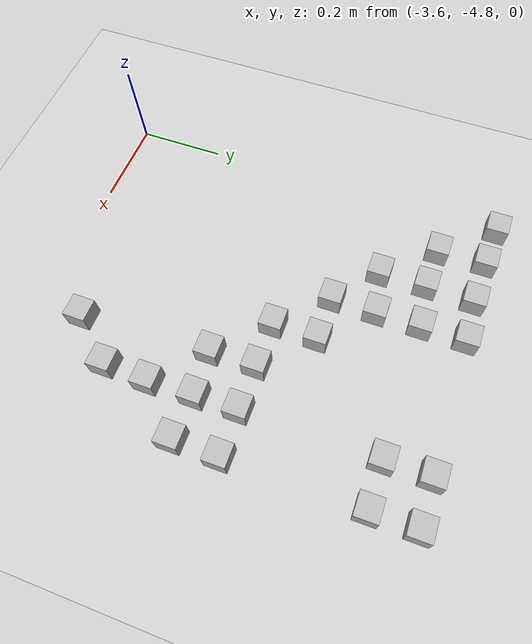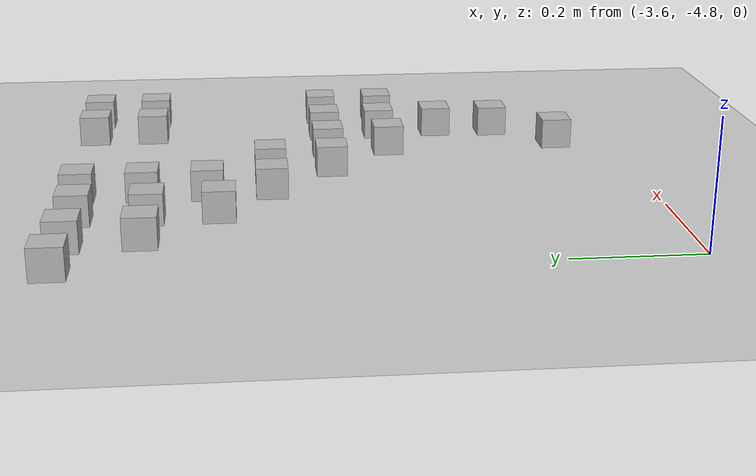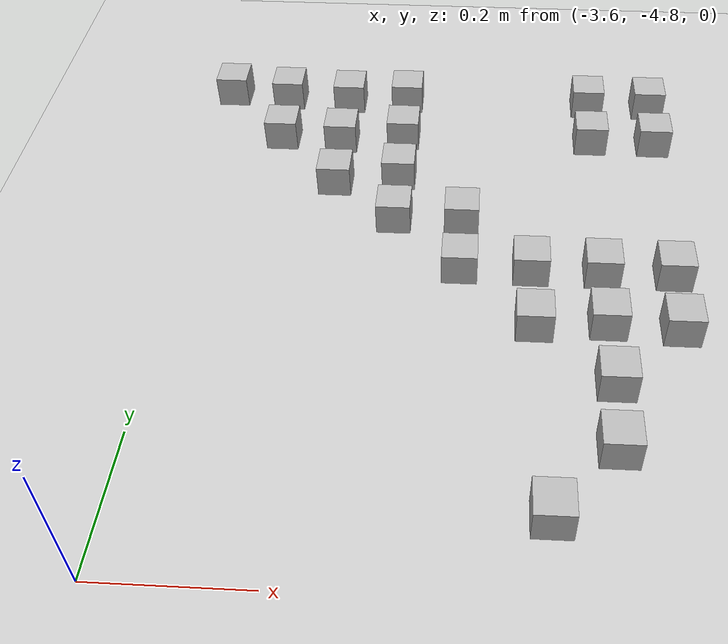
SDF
<sdf version="1.6">
 <world name="default">
  <model name="ground_plane">
   <static>1</static>
   <link name="link">
    <collision name="collision">
     <geometry><plane><normal>0 0 1</normal><size>100 100</size></plane></geometry>
     <surface><friction><ode><mu>100</mu><mu2>50</mu2></ode></friction></surface>
    </collision>
    <visual name="visual">
     <cast_shadows>0</cast_shadows>
     <geometry><plane><normal>0 0 1</normal><size>100 100</size></plane></geometry>
     <material>
      <script><uri>file://media/materials/scripts/gazebo.material</uri><name>Gazebo/Grey</name></script>
     </material>
    </visual>
   </link>
  </model>
  <model name="at192">
   <static>0</static>
   <link name="link">
    <inertial>
     <mass>0.01</mass>
     <inertia><ixx>4e-05</ixx><ixy>0</ixy><ixz>0</ixz><iyy>4e-05</iyy><iyz>0</iyz><izz>4e-05</izz></inertia>
    </inertial>
    <visual name="visual">
     <geometry><box><size>0.05 0.05 0.05</size></box></geometry>
     <material>
      <script>
       <uri>model://at0/materials/scripts</uri>
       <uri>model://at0/materials/textures</uri>
       <name>at0/Diffuse</name>
      </script>
     </material>
    </visual>
    <collision name="collision">
     <geometry><box><size>0.05 0.05 0.05</size></box></geometry>
     <surface><friction><ode><mu>0.8</mu><mu2>0.7</mu2></ode></friction></surface>
    </collision>
   </link>
   <pose>-3.08201 -4.69703 0.025 0 -0 0</pose>
  </model>
  <model name="at193">
   <static>0</static>
   <link name="link">
    <inertial>
     <mass>0.01</mass>
     <inertia><ixx>4e-05</ixx><ixy>0</ixy><ixz>0</ixz><iyy>4e-05</iyy><iyz>0</iyz><izz>4e-05</izz></inertia>
    </inertial>
    <visual name="visual">
     <geometry><box><size>0.05 0.05 0.05</size></box></geometry>
     <material>
      <script>
       <uri>model://at0/materials/scripts</uri>
       <uri>model://at0/materials/textures</uri>
       <name>at0/Diffuse</name>
      </script>
     </material>
    </visual>
    <collision name="collision">
     <geometry><box><size>0.05 0.05 0.05</size></box></geometry>
     <surface><friction><ode><mu>0.8</mu><mu2>0.7</mu2></ode></friction></surface>
    </collision>
   </link>
   <pose>-3.2 -4.3 0.025 0 -0 0</pose>
  </model>
  <model name="at194">
   <static>0</static>
   <link name="link">
    <inertial>
     <mass>0.01</mass>
     <inertia><ixx>4e-05</ixx><ixy>0</ixy><ixz>0</ixz><iyy>4e-05</iyy><iyz>0</iyz><izz>4e-05</izz></inertia>
    </inertial>
    <visual name="visual">
     <geometry><box><size>0.05 0.05 0.05</size></box></geometry>
     <material>
      <script>
       <uri>model://at0/materials/scripts</uri>
       <uri>model://at0/materials/textures</uri>
       <name>at0/Diffuse</name>
      </script>
     </material>
    </visual>
    <collision name="collision">
     <geometry><box><size>0.05 0.05 0.05</size></box></geometry>
     <surface><friction><ode><mu>0.8</mu><mu2>0.7</mu2></ode></friction></surface>
    </collision>
   </link>
   <pose>-3.1 -4.3 0.025 0 -0 0</pose>
  </model>
  <model name="at195">
   <static>0</static>
   <link name="link">
    <inertial>
     <mass>0.01</mass>
     <inertia><ixx>4e-05</ixx><ixy>0</ixy><ixz>0</ixz><iyy>4e-05</iyy><iyz>0</iyz><izz>4e-05</izz></inertia>
    </inertial>
    <visual name="visual">
     <geometry><box><size>0.05 0.05 0.05</size></box></geometry>
     <material>
      <script>
       <uri>model://at0/materials/scripts</uri>
       <uri>model://at0/materials/textures</uri>
       <name>at0/Diffuse</name>
      </script>
     </material>
    </visual>
    <collision name="collision">
     <geometry><box><size>0.05 0.05 0.05</size></box></geometry>
     <surface><friction><ode><mu>0.8</mu><mu2>0.7</mu2></ode></friction></surface>
    </collision>
   </link>
   <pose>-3 -4.3 0.025 0 -0 0</pose>
  </model>
  <model name="at196">
   <static>0</static>
   <link name="link">
    <inertial>
     <mass>0.01</mass>
     <inertia><ixx>4e-05</ixx><ixy>0</ixy><ixz>0</ixz><iyy>4e-05</iyy><iyz>0</iyz><izz>4e-05</izz></inertia>
    </inertial>
    <visual name="visual">
     <geometry><box><size>0.05 0.05 0.05</size></box></geometry>
     <material>
      <script>
       <uri>model://at0/materials/scripts</uri>
       <uri>model://at0/materials/textures</uri>
       <name>at0/Diffuse</name>
      </script>
     </material>
    </visual>
    <collision name="collision">
     <geometry><box><size>0.05 0.05 0.05</size></box></geometry>
     <surface><friction><ode><mu>0.8</mu><mu2>0.7</mu2></ode></friction></surface>
    </collision>
   </link>
   <pose>-2.9 -4.3 0.025 0 -0 0</pose>
  </model>
  <model name="at200">
   <static>0</static>
   <link name="link">
    <inertial>
     <mass>0.01</mass>
     <inertia><ixx>4e-05</ixx><ixy>0</ixy><ixz>0</ixz><iyy>4e-05</iyy><iyz>0</iyz><izz>4e-05</izz></inertia>
    </inertial>
    <visual name="visual">
     <geometry><box><size>0.05 0.05 0.05</size></box></geometry>
     <material>
      <script>
       <uri>model://at0/materials/scripts</uri>
       <uri>model://at0/materials/textures</uri>
       <name>at0/Diffuse</name>
      </script>
     </material>
    </visual>
    <collision name="collision">
     <geometry><box><size>0.05 0.05 0.05</size></box></geometry>
     <surface><friction><ode><mu>0.8</mu><mu2>0.7</mu2></ode></friction></surface>
    </collision>
   </link>
   <pose>-3.3 -4.2 0.025 0 -0 0</pose>
  </model>
  <model name="at201">
   <static>0</static>
   <link name="link">
    <inertial>
     <mass>0.01</mass>
     <inertia><ixx>4e-05</ixx><ixy>0</ixy><ixz>0</ixz><iyy>4e-05</iyy><iyz>0</iyz><izz>4e-05</izz></inertia>
    </inertial>
    <visual name="visual">
     <geometry><box><size>0.05 0.05 0.05</size></box></geometry>
     <material>
      <script>
       <uri>model://at0/materials/scripts</uri>
       <uri>model://at0/materials/textures</uri>
       <name>at0/Diffuse</name>
      </script>
     </material>
    </visual>
    <collision name="collision">
     <geometry><box><size>0.05 0.05 0.05</size></box></geometry>
     <surface><friction><ode><mu>0.8</mu><mu2>0.7</mu2></ode></friction></surface>
    </collision>
   </link>
   <pose>-3.2 -4.2 0.025 0 -0 0</pose>
  </model>
  <model name="at202">
   <static>0</static>
   <link name="link">
    <inertial>
     <mass>0.01</mass>
     <inertia><ixx>4e-05</ixx><ixy>0</ixy><ixz>0</ixz><iyy>4e-05</iyy><iyz>0</iyz><izz>4e-05</izz></inertia>
    </inertial>
    <visual name="visual">
     <geometry><box><size>0.05 0.05 0.05</size></box></geometry>
     <material>
      <script>
       <uri>model://at0/materials/scripts</uri>
       <uri>model://at0/materials/textures</uri>
       <name>at0/Diffuse</name>
      </script>
     </material>
    </visual>
    <collision name="collision">
     <geometry><box><size>0.05 0.05 0.05</size></box></geometry>
     <surface><friction><ode><mu>0.8</mu><mu2>0.7</mu2></ode></friction></surface>
    </collision>
   </link>
   <pose>-2.9988 -4.59901 0.025 0 -0 0</pose>
  </model>
  <model name="at203">
   <static>0</static>
   <link name="link">
    <inertial>
     <mass>0.01</mass>
     <inertia><ixx>4e-05</ixx><ixy>0</ixy><ixz>0</ixz><iyy>4e-05</iyy><iyz>0</iyz><izz>4e-05</izz></inertia>
    </inertial>
    <visual name="visual">
     <geometry><box><size>0.05 0.05 0.05</size></box></geometry>
     <material>
      <script>
       <uri>model://at0/materials/scripts</uri>
       <uri>model://at0/materials/textures</uri>
       <name>at0/Diffuse</name>
      </script>
     </material>
    </visual>
    <collision name="collision">
     <geometry><box><size>0.05 0.05 0.05</size></box></geometry>
     <surface><friction><ode><mu>0.8</mu><mu2>0.7</mu2></ode></friction></surface>
    </collision>
   </link>
   <pose>-3.5938 -3.89359 0.025 0 -0 0</pose>
  </model>
  <model name="at208">
   <static>0</static>
   <link name="link">
    <inertial>
     <mass>0.01</mass>
     <inertia><ixx>4e-05</ixx><ixy>0</ixy><ixz>0</ixz><iyy>4e-05</iyy><iyz>0</iyz><izz>4e-05</izz></inertia>
    </inertial>
    <visual name="visual">
     <geometry><box><size>0.05 0.05 0.05</size></box></geometry>
     <material>
      <script>
       <uri>model://at0/materials/scripts</uri>
       <uri>model://at0/materials/textures</uri>
       <name>at0/Diffuse</name>
      </script>
     </material>
    </visual>
    <collision name="collision">
     <geometry><box><size>0.05 0.05 0.05</size></box></geometry>
     <surface><friction><ode><mu>0.8</mu><mu2>0.7</mu2></ode></friction></surface>
    </collision>
   </link>
   <pose>-3.3 -4.1 0.025 0 -0 0</pose>
  </model>
  <model name="at210">
   <static>0</static>
   <link name="link">
    <inertial>
     <mass>0.01</mass>
     <inertia><ixx>4e-05</ixx><ixy>0</ixy><ixz>0</ixz><iyy>4e-05</iyy><iyz>0</iyz><izz>4e-05</izz></inertia>
    </inertial>
    <visual name="visual">
     <geometry><box><size>0.05 0.05 0.05</size></box></geometry>
     <material>
      <script>
       <uri>model://at0/materials/scripts</uri>
       <uri>model://at0/materials/textures</uri>
       <name>at0/Diffuse</name>
      </script>
     </material>
    </visual>
    <collision name="collision">
     <geometry><box><size>0.05 0.05 0.05</size></box></geometry>
     <surface><friction><ode><mu>0.8</mu><mu2>0.7</mu2></ode></friction></surface>
    </collision>
   </link>
   <pose>-3.39673 -4.11899 0.025 0 -0 0</pose>
  </model>
  <model name="at211">
   <static>0</static>
   <link name="link">
    <inertial>
     <mass>0.01</mass>
     <inertia><ixx>4e-05</ixx><ixy>0</ixy><ixz>0</ixz><iyy>4e-05</iyy><iyz>0</iyz><izz>4e-05</izz></inertia>
    </inertial>
    <visual name="visual">
     <geometry><box><size>0.05 0.05 0.05</size></box></geometry>
     <material>
      <script>
       <uri>model://at0/materials/scripts</uri>
       <uri>model://at0/materials/textures</uri>
       <name>at0/Diffuse</name>
      </script>
     </material>
    </visual>
    <collision name="collision">
     <geometry><box><size>0.05 0.05 0.05</size></box></geometry>
     <surface><friction><ode><mu>0.8</mu><mu2>0.7</mu2></ode></friction></surface>
    </collision>
   </link>
   <pose>-2.99803 -4.39618 0.025 0 -0 0</pose>
  </model>
  <model name="at212">
   <static>0</static>
   <link name="link">
    <inertial>
     <mass>0.01</mass>
     <inertia><ixx>4e-05</ixx><ixy>0</ixy><ixz>0</ixz><iyy>4e-05</iyy><iyz>0</iyz><izz>4e-05</izz></inertia>
    </inertial>
    <visual name="visual">
     <geometry><box><size>0.05 0.05 0.05</size></box></geometry>
     <material>
      <script>
       <uri>model://at0/materials/scripts</uri>
       <uri>model://at0/materials/textures</uri>
       <name>at0/Diffuse</name>
      </script>
     </material>
    </visual>
    <collision name="collision">
     <geometry><box><size>0.05 0.05 0.05</size></box></geometry>
     <surface><friction><ode><mu>0.8</mu><mu2>0.7</mu2></ode></friction></surface>
    </collision>
   </link>
   <pose>-2.90106 -4.40181 0.025 0 -0 0</pose>
  </model>
  <model name="at214">
   <static>0</static>
   <link name="link">
    <inertial>
     <mass>0.01</mass>
     <inertia><ixx>4e-05</ixx><ixy>0</ixy><ixz>0</ixz><iyy>4e-05</iyy><iyz>0</iyz><izz>4e-05</izz></inertia>
    </inertial>
    <visual name="visual">
     <geometry><box><size>0.05 0.05 0.05</size></box></geometry>
     <material>
      <script>
       <uri>model://at0/materials/scripts</uri>
       <uri>model://at0/materials/textures</uri>
       <name>at0/Diffuse</name>
      </script>
     </material>
    </visual>
    <collision name="collision">
     <geometry><box><size>0.05 0.05 0.05</size></box></geometry>
     <surface><friction><ode><mu>0.8</mu><mu2>0.7</mu2></ode></friction></surface>
    </collision>
   </link>
   <pose>-3.09696 -4.40341 0.025 0 -0 0</pose>
  </model>
  <model name="at216">
   <static>0</static>
   <link name="link">
    <inertial>
     <mass>0.01</mass>
     <inertia><ixx>4e-05</ixx><ixy>0</ixy><ixz>0</ixz><iyy>4e-05</iyy><iyz>0</iyz><izz>4e-05</izz></inertia>
    </inertial>
    <visual name="visual">
     <geometry><box><size>0.05 0.05 0.05</size></box></geometry>
     <material>
      <script>
       <uri>model://at0/materials/scripts</uri>
       <uri>model://at0/materials/textures</uri>
       <name>at0/Diffuse</name>
      </script>
     </material>
    </visual>
    <collision name="collision">
     <geometry><box><size>0.05 0.05 0.05</size></box></geometry>
     <surface><friction><ode><mu>0.8</mu><mu2>0.7</mu2></ode></friction></surface>
    </collision>
   </link>
   <pose>-3.3 -4 0.025 0 -0 0</pose>
  </model>
  <model name="at218">
   <static>0</static>
   <link name="link">
    <inertial>
     <mass>0.01</mass>
     <inertia><ixx>4e-05</ixx><ixy>0</ixy><ixz>0</ixz><iyy>4e-05</iyy><iyz>0</iyz><izz>4e-05</izz></inertia>
    </inertial>
    <visual name="visual">
     <geometry><box><size>0.05 0.05 0.05</size></box></geometry>
     <material>
      <script>
       <uri>model://at0/materials/scripts</uri>
       <uri>model://at0/materials/textures</uri>
       <name>at0/Diffuse</name>
      </script>
     </material>
    </visual>
    <collision name="collision">
     <geometry><box><size>0.05 0.05 0.05</size></box></geometry>
     <surface><friction><ode><mu>0.8</mu><mu2>0.7</mu2></ode></friction></surface>
    </collision>
   </link>
   <pose>-3.39893 -4.01295 0.025 0 -0 0</pose>
  </model>
  <model name="at219">
   <static>0</static>
   <link name="link">
    <inertial>
     <mass>0.01</mass>
     <inertia><ixx>4e-05</ixx><ixy>0</ixy><ixz>0</ixz><iyy>4e-05</iyy><iyz>0</iyz><izz>4e-05</izz></inertia>
    </inertial>
    <visual name="visual">
     <geometry><box><size>0.05 0.05 0.05</size></box></geometry>
     <material>
      <script>
       <uri>model://at0/materials/scripts</uri>
       <uri>model://at0/materials/textures</uri>
       <name>at0/Diffuse</name>
      </script>
     </material>
    </visual>
    <collision name="collision">
     <geometry><box><size>0.05 0.05 0.05</size></box></geometry>
     <surface><friction><ode><mu>0.8</mu><mu2>0.7</mu2></ode></friction></surface>
    </collision>
   </link>
   <pose>-3 -4 0.025 0 -0 0</pose>
  </model>
  <model name="at220">
   <static>0</static>
   <link name="link">
    <inertial>
     <mass>0.01</mass>
     <inertia><ixx>4e-05</ixx><ixy>0</ixy><ixz>0</ixz><iyy>4e-05</iyy><iyz>0</iyz><izz>4e-05</izz></inertia>
    </inertial>
    <visual name="visual">
     <geometry><box><size>0.05 0.05 0.05</size></box></geometry>
     <material>
      <script>
       <uri>model://at0/materials/scripts</uri>
       <uri>model://at0/materials/textures</uri>
       <name>at0/Diffuse</name>
      </script>
     </material>
    </visual>
    <collision name="collision">
     <geometry><box><size>0.05 0.05 0.05</size></box></geometry>
     <surface><friction><ode><mu>0.8</mu><mu2>0.7</mu2></ode></friction></surface>
    </collision>
   </link>
   <pose>-2.9 -4 0.025 0 -0 0</pose>
  </model>
  <model name="at224">
   <static>0</static>
   <link name="link">
    <inertial>
     <mass>0.01</mass>
     <inertia><ixx>4e-05</ixx><ixy>0</ixy><ixz>0</ixz><iyy>4e-05</iyy><iyz>0</iyz><izz>4e-05</izz></inertia>
    </inertial>
    <visual name="visual">
     <geometry><box><size>0.05 0.05 0.05</size></box></geometry>
     <material>
      <script>
       <uri>model://at0/materials/scripts</uri>
       <uri>model://at0/materials/textures</uri>
       <name>at0/Diffuse</name>
      </script>
     </material>
    </visual>
    <collision name="collision">
     <geometry><box><size>0.05 0.05 0.05</size></box></geometry>
     <surface><friction><ode><mu>0.8</mu><mu2>0.7</mu2></ode></friction></surface>
    </collision>
   </link>
   <pose>-3.3 -3.9 0.025 0 -0 0</pose>
  </model>
  <model name="at226">
   <static>0</static>
   <link name="link">
    <inertial>
     <mass>0.01</mass>
     <inertia><ixx>4e-05</ixx><ixy>0</ixy><ixz>0</ixz><iyy>4e-05</iyy><iyz>0</iyz><izz>4e-05</izz></inertia>
    </inertial>
    <visual name="visual">
     <geometry><box><size>0.05 0.05 0.05</size></box></geometry>
     <material>
      <script>
       <uri>model://at0/materials/scripts</uri>
       <uri>model://at0/materials/textures</uri>
       <name>at0/Diffuse</name>
      </script>
     </material>
    </visual>
    <collision name="collision">
     <geometry><box><size>0.05 0.05 0.05</size></box></geometry>
     <surface><friction><ode><mu>0.8</mu><mu2>0.7</mu2></ode></friction></surface>
    </collision>
   </link>
   <pose>-3.39628 -3.9048 0.025 0 -0 0</pose>
  </model>
  <model name="at227">
   <static>0</static>
   <link name="link">
    <inertial>
     <mass>0.01</mass>
     <inertia><ixx>4e-05</ixx><ixy>0</ixy><ixz>0</ixz><iyy>4e-05</iyy><iyz>0</iyz><izz>4e-05</izz></inertia>
    </inertial>
    <visual name="visual">
     <geometry><box><size>0.05 0.05 0.05</size></box></geometry>
     <material>
      <script>
       <uri>model://at0/materials/scripts</uri>
       <uri>model://at0/materials/textures</uri>
       <name>at0/Diffuse</name>
      </script>
     </material>
    </visual>
    <collision name="collision">
     <geometry><box><size>0.05 0.05 0.05</size></box></geometry>
     <surface><friction><ode><mu>0.8</mu><mu2>0.7</mu2></ode></friction></surface>
    </collision>
   </link>
   <pose>-3 -3.9 0.025 0 -0 0</pose>
  </model>
  <model name="at228">
   <static>0</static>
   <link name="link">
    <inertial>
     <mass>0.01</mass>
     <inertia><ixx>4e-05</ixx><ixy>0</ixy><ixz>0</ixz><iyy>4e-05</iyy><iyz>0</iyz><izz>4e-05</izz></inertia>
    </inertial>
    <visual name="visual">
     <geometry><box><size>0.05 0.05 0.05</size></box></geometry>
     <material>
      <script>
       <uri>model://at0/materials/scripts</uri>
       <uri>model://at0/materials/textures</uri>
       <name>at0/Diffuse</name>
      </script>
     </material>
    </visual>
    <collision name="collision">
     <geometry><box><size>0.05 0.05 0.05</size></box></geometry>
     <surface><friction><ode><mu>0.8</mu><mu2>0.7</mu2></ode></friction></surface>
    </collision>
   </link>
   <pose>-2.9 -3.9 0.025 0 -0 0</pose>
  </model>
  <model name="at233">
   <static>0</static>
   <link name="link">
    <inertial>
     <mass>0.01</mass>
     <inertia><ixx>4e-05</ixx><ixy>0</ixy><ixz>0</ixz><iyy>4e-05</iyy><iyz>0</iyz><izz>4e-05</izz></inertia>
    </inertial>
    <visual name="visual">
     <geometry><box><size>0.05 0.05 0.05</size></box></geometry>
     <material>
      <script>
       <uri>model://at0/materials/scripts</uri>
       <uri>model://at0/materials/textures</uri>
       <name>at0/Diffuse</name>
      </script>
     </material>
    </visual>
    <collision name="collision">
     <geometry><box><size>0.05 0.05 0.05</size></box></geometry>
     <surface><friction><ode><mu>0.8</mu><mu2>0.7</mu2></ode></friction></surface>
    </collision>
   </link>
   <pose>-2.99443 -4.49842 0.025 0 -0 0</pose>
  </model>
  <model name="at242">
   <static>0</static>
   <link name="link">
    <inertial>
     <mass>0.01</mass>
     <inertia><ixx>4e-05</ixx><ixy>0</ixy><ixz>0</ixz><iyy>4e-05</iyy><iyz>0</iyz><izz>4e-05</izz></inertia>
    </inertial>
    <visual name="visual">
     <geometry><box><size>0.05 0.05 0.05</size></box></geometry>
     <material>
      <script>
       <uri>model://at0/materials/scripts</uri>
       <uri>model://at0/materials/textures</uri>
       <name>at0/Diffuse</name>
      </script>
     </material>
    </visual>
    <collision name="collision">
     <geometry><box><size>0.05 0.05 0.05</size></box></geometry>
     <surface><friction><ode><mu>0.8</mu><mu2>0.7</mu2></ode></friction></surface>
    </collision>
   </link>
   <pose>-3.49417 -4.00922 0.025 0 -0 0</pose>
  </model>
  <model name="at243">
   <static>0</static>
   <link name="link">
    <inertial>
     <mass>0.01</mass>
     <inertia><ixx>4e-05</ixx><ixy>0</ixy><ixz>0</ixz><iyy>4e-05</iyy><iyz>0</iyz><izz>4e-05</izz></inertia>
    </inertial>
    <visual name="visual">
     <geometry><box><size>0.05 0.05 0.05</size></box></geometry>
     <material>
      <script>
       <uri>model://at0/materials/scripts</uri>
       <uri>model://at0/materials/textures</uri>
       <name>at0/Diffuse</name>
      </script>
     </material>
    </visual>
    <collision name="collision">
     <geometry><box><size>0.05 0.05 0.05</size></box></geometry>
     <surface><friction><ode><mu>0.8</mu><mu2>0.7</mu2></ode></friction></surface>
    </collision>
   </link>
   <pose>-3.49891 -3.90058 0.025 0 -0 0</pose>
  </model>
 </world>
</sdf>
